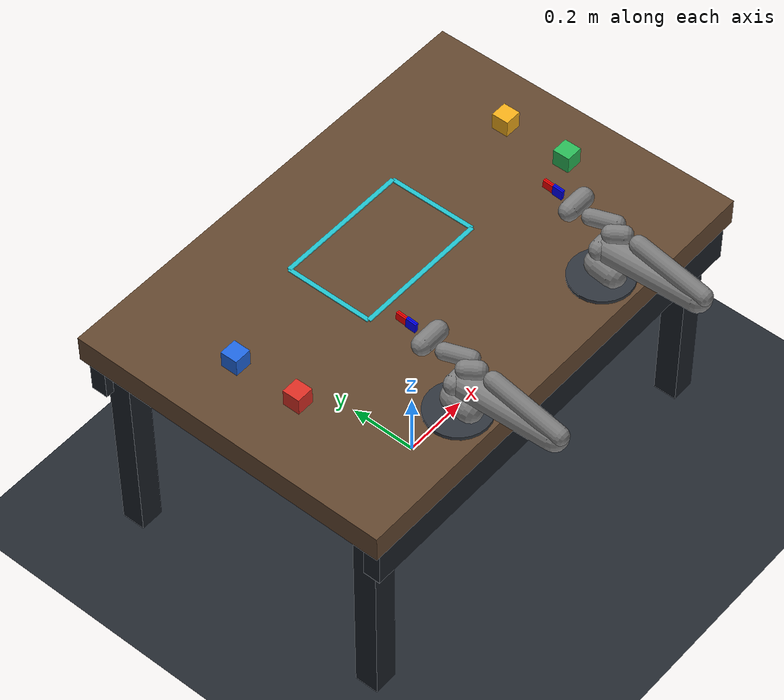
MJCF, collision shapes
<mujoco model="dual_piper_tabletop">
  <compiler angle="radian" meshdir="assets/"/>

  <option impratio="10" integrator="implicitfast" cone="elliptic"/>

  <visual>
    <global azimuth="135" elevation="-25" offwidth="1600" offheight="1200"/>
    <headlight ambient="0.25 0.25 0.25" diffuse="0.55 0.55 0.55" specular="0.1 0.1 0.1"/>
    <rgba haze="0.12 0.16 0.22 1"/>
  </visual>

  <statistic extent="1.25" center="0 0 0.72"/>

  <default>
    <default class="piper">
      <joint armature="0.005" frictionloss="0.3"/>
      <general forcerange="-100 100" biastype="affine" biasprm="0 -1"/>
      <default class="finger">
        <joint type="slide" frictionloss="0"/>
        <general forcerange="-10 10"/>
      </default>
      <default class="visual">
        <geom type="mesh" contype="0" conaffinity="0" group="2" density="0"/>
      </default>
      <default class="collision">
        <geom type="capsule" group="3"/>
      </default>
    </default>
  </default>

  <asset>
    <texture type="skybox" colorspace="auto" builtin="gradient" rgb1="0.18 0.23 0.3" rgb2="0.035 0.045 0.065" width="512" height="3072"/>
    <texture type="2d" colorspace="auto" name="groundplane_tex" builtin="checker" mark="edge" rgb1="0.16 0.18 0.21" rgb2="0.11 0.13 0.16" markrgb="0.32 0.36 0.42" width="300" height="300"/>
    <material name="gray_mat" rgba="0.59 0.59 0.59 1"/>
    <material name="light_gray_mat" rgba="0.98 0.98 0.98 1"/>
    <material name="light_medium_gray_mat" rgba="0.85 0.85 0.85 1"/>
    <material name="dark_gray_mat" rgba="0.086 0.086 0.086 1"/>
    <material name="darker_gray_mat" rgba="0.14 0.14 0.14 1"/>
    <material name="white_mat"/>
    <material name="red_mat" rgba="0.82 0.15 0.15 1"/>
    <material name="black_mat" rgba="0 0 0 1"/>
    <material name="light_blue" rgba="0.79 0.82 0.93 1"/>
    <material name="groundplane_mat" texture="groundplane_tex" texuniform="true" texrepeat="4 4" reflectance="0.12"/>
    <material name="tabletop_mat" specular="0.15" shininess="0.25" rgba="0.38 0.27 0.18 1"/>
    <material name="table_frame_mat" rgba="0.1 0.12 0.15 1"/>
    <material name="mount_mat" rgba="0.18 0.2 0.23 1"/>
    <mesh name="link2_0" content_type="model/obj" file="link2_0.obj"/>
    <mesh name="link2_1" content_type="model/obj" file="link2_1.obj"/>
    <mesh name="link2_2" content_type="model/obj" file="link2_2.obj"/>
    <mesh name="link2_3" content_type="model/obj" file="link2_3.obj"/>
    <mesh name="link2_4" content_type="model/obj" file="link2_4.obj"/>
    <mesh name="link2_5" content_type="model/obj" file="link2_5.obj"/>
    <mesh name="link2_6" content_type="model/obj" file="link2_6.obj"/>
    <mesh name="link2_7" content_type="model/obj" file="link2_7.obj"/>
    <mesh name="link2_8" content_type="model/obj" file="link2_8.obj"/>
    <mesh name="link2_9" content_type="model/obj" file="link2_9.obj"/>
    <mesh name="link2_10" content_type="model/obj" file="link2_10.obj"/>
    <mesh name="link2_11" content_type="model/obj" file="link2_11.obj"/>
    <mesh name="link2_12" content_type="model/obj" file="link2_12.obj"/>
    <mesh name="link2_13" content_type="model/obj" file="link2_13.obj"/>
    <mesh name="link2_14" content_type="model/obj" file="link2_14.obj"/>
    <mesh name="link2_15" content_type="model/obj" file="link2_15.obj"/>
    <mesh name="link2_16" content_type="model/obj" file="link2_16.obj"/>
    <mesh name="link2_17" content_type="model/obj" file="link2_17.obj"/>
    <mesh name="link2_18" content_type="model/obj" file="link2_18.obj"/>
    <mesh name="link2_19" content_type="model/obj" file="link2_19.obj"/>
    <mesh name="link2_20" content_type="model/obj" file="link2_20.obj"/>
    <mesh name="link2_21" content_type="model/obj" file="link2_21.obj"/>
    <mesh name="link2_22" content_type="model/obj" file="link2_22.obj"/>
    <mesh name="link2_23" content_type="model/obj" file="link2_23.obj"/>
    <mesh name="link2_24" content_type="model/obj" file="link2_24.obj"/>
    <mesh name="link2_25" content_type="model/obj" file="link2_25.obj"/>
    <mesh name="link2_26" content_type="model/obj" file="link2_26.obj"/>
    <mesh name="link2_27" content_type="model/obj" file="link2_27.obj"/>
    <mesh name="link2_28" content_type="model/obj" file="link2_28.obj"/>
    <mesh name="link2_29" content_type="model/obj" file="link2_29.obj"/>
    <mesh name="link2_30" content_type="model/obj" file="link2_30.obj"/>
    <mesh name="link2_31" content_type="model/obj" file="link2_31.obj"/>
    <mesh name="link3_0" content_type="model/obj" file="link3_0.obj"/>
    <mesh name="link3_1" content_type="model/obj" file="link3_1.obj"/>
    <mesh name="link3_2" content_type="model/obj" file="link3_2.obj"/>
    <mesh name="link3_3" content_type="model/obj" file="link3_3.obj"/>
    <mesh name="link3_4" content_type="model/obj" file="link3_4.obj"/>
    <mesh name="link3_5" content_type="model/obj" file="link3_5.obj"/>
    <mesh name="link3_7" content_type="model/obj" file="link3_7.obj"/>
    <mesh name="link3_8" content_type="model/obj" file="link3_8.obj"/>
    <mesh name="link3_9" content_type="model/obj" file="link3_9.obj"/>
    <mesh name="link3_10" content_type="model/obj" file="link3_10.obj"/>
    <mesh name="link3_11" content_type="model/obj" file="link3_11.obj"/>
    <mesh name="link3_12" content_type="model/obj" file="link3_12.obj"/>
    <mesh name="link3_13" content_type="model/obj" file="link3_13.obj"/>
    <mesh name="link3_14" content_type="model/obj" file="link3_14.obj"/>
    <mesh name="link3_15" content_type="model/obj" file="link3_15.obj"/>
    <mesh name="link3_16" content_type="model/obj" file="link3_16.obj"/>
    <mesh name="link3_17" content_type="model/obj" file="link3_17.obj"/>
    <mesh name="link3_18" content_type="model/obj" file="link3_18.obj"/>
    <mesh name="link3_19" content_type="model/obj" file="link3_19.obj"/>
    <mesh name="link3_20" content_type="model/obj" file="link3_20.obj"/>
    <mesh name="link3_21" content_type="model/obj" file="link3_21.obj"/>
    <mesh name="link3_22" content_type="model/obj" file="link3_22.obj"/>
    <mesh name="link3_23" content_type="model/obj" file="link3_23.obj"/>
    <mesh name="link3_24" content_type="model/obj" file="link3_24.obj"/>
    <mesh name="link3_25" content_type="model/obj" file="link3_25.obj"/>
    <mesh name="link3_26" content_type="model/obj" file="link3_26.obj"/>
    <mesh name="link3_27" content_type="model/obj" file="link3_27.obj"/>
    <mesh name="link3_28" content_type="model/obj" file="link3_28.obj"/>
    <mesh name="link4_2" content_type="model/obj" file="link4_2.obj"/>
    <mesh name="link4_3" content_type="model/obj" file="link4_3.obj"/>
    <mesh name="link4_4" content_type="model/obj" file="link4_4.obj"/>
    <mesh name="link4_5" content_type="model/obj" file="link4_5.obj"/>
    <mesh name="link4_6" content_type="model/obj" file="link4_6.obj"/>
    <mesh name="link5_2" content_type="model/obj" file="link5_2.obj"/>
    <mesh name="link5_3" content_type="model/obj" file="link5_3.obj"/>
    <mesh name="link5_4" content_type="model/obj" file="link5_4.obj"/>
    <mesh name="link5_5" content_type="model/obj" file="link5_5.obj"/>
    <mesh name="link5_6" content_type="model/obj" file="link5_6.obj"/>
    <mesh name="link5_7" content_type="model/obj" file="link5_7.obj"/>
    <mesh name="link5_8" content_type="model/obj" file="link5_8.obj"/>
    <mesh name="base_link" content_type="model/stl" file="base_link.stl"/>
    <mesh name="link1" content_type="model/stl" file="link1.stl"/>
    <mesh name="link2" content_type="model/stl" file="link2.stl"/>
    <mesh name="link2_gray" content_type="model/stl" file="link2_gray.stl"/>
    <mesh name="link3" content_type="model/stl" file="link3.stl"/>
    <mesh name="link4" content_type="model/stl" file="link4.stl"/>
    <mesh name="link5" content_type="model/stl" file="link5.stl"/>
    <mesh name="link6" content_type="model/stl" file="link6.stl"/>
    <mesh name="link7" content_type="model/stl" file="link7.stl"/>
    <mesh name="link8" content_type="model/stl" file="link8.stl"/>
  </asset>

  <worldbody>
    <geom name="floor" size="3 3 0.05" type="plane" material="groundplane_mat"/>
    <camera name="top_down" pos="0 0 2.25" fovy="42"/>
    <light name="key_light" pos="0 -1.2 2.4" dir="0 0.33035 -0.943858" diffuse="0.85 0.82 0.78"/>
    <light name="fill_light" pos="0.8 1 1.8" dir="-0.232873 -0.279448 -0.931493" diffuse="0.45 0.52 0.62"/>
    <body name="base_link_arm0" childclass="piper" pos="-0.28 -0.38 0.72"
      quat="0.707107 0 0 0.707107" gravcomp="1">
      <inertial pos="-0.00979275 1.82906e-06 0.04101" quat="0.692988 -0.137524 -0.137826 0.69416" mass="0.162549" diaginertia="0.000269445 0.000227478 0.000221437"/>
      <geom class="visual" material="gray_mat" mesh="base_link"/>
      <geom class="collision" size="0.0357691 0.024065" pos="-0.0107422 1.86147e-06 0.0395259" quat="0.536726 0.460902 0.460261 0.536334"/>
      <body name="link1_arm0" pos="0 0 0.123" quat="0.707105 0 0 -0.707108" gravcomp="1">
        <inertial pos="0.00131676 0.000310289 -0.00922875" quat="0.557105 0.432155 0.377373 0.600388" mass="0.097868" diaginertia="9.25942e-05 8.3083e-05 7.69469e-05"/>
        <joint name="joint1_arm0" pos="0 0 0" axis="0 0 1" range="-2.618 2.618"/>
        <geom class="visual" material="gray_mat" mesh="link1"/>
        <geom class="collision" size="0.0271645 0.0182943" pos="0.00101464 -0.000188218 -0.00563398" quat="0.519141 0.484098 0.499512 0.496617"/>
        <body name="link2_arm0" quat="0.499998 0.5 -0.500002 -0.5" gravcomp="1">
          <inertial pos="0.148794 -0.00242027 0.00175155" quat="-0.0249063 0.70684 0.00803509 0.706889" mass="0.290889" diaginertia="0.00177549 0.00173142 0.00014552"/>
          <joint name="joint2_arm0" pos="0 0 0" axis="0 0 1" range="0 3.14"/>
          <geom class="visual" material="gray_mat" mesh="link2_0"/>
          <geom class="visual" material="darker_gray_mat" mesh="link2_1"/>
          <geom class="visual" material="darker_gray_mat" mesh="link2_2"/>
          <geom class="visual" material="dark_gray_mat" mesh="link2_3"/>
          <geom class="visual" material="dark_gray_mat" mesh="link2_4"/>
          <geom class="visual" material="red_mat" mesh="link2_5"/>
          <geom class="visual" material="dark_gray_mat" mesh="link2_6"/>
          <geom class="visual" material="gray_mat" mesh="link2_7"/>
          <geom class="visual" material="red_mat" mesh="link2_8"/>
          <geom class="visual" material="red_mat" mesh="link2_9"/>
          <geom class="visual" material="gray_mat" mesh="link2_10"/>
          <geom class="visual" material="red_mat" mesh="link2_11"/>
          <geom class="visual" material="red_mat" mesh="link2_12"/>
          <geom class="visual" material="red_mat" mesh="link2_13"/>
          <geom class="visual" material="red_mat" mesh="link2_14"/>
          <geom class="visual" material="red_mat" mesh="link2_15"/>
          <geom class="visual" material="red_mat" mesh="link2_16"/>
          <geom class="visual" material="red_mat" mesh="link2_17"/>
          <geom class="visual" material="red_mat" mesh="link2_18"/>
          <geom class="visual" material="red_mat" mesh="link2_19"/>
          <geom class="visual" material="red_mat" mesh="link2_20"/>
          <geom class="visual" material="gray_mat" mesh="link2_21"/>
          <geom class="visual" material="red_mat" mesh="link2_22"/>
          <geom class="visual" material="red_mat" mesh="link2_23"/>
          <geom class="visual" material="red_mat" mesh="link2_24"/>
          <geom class="visual" material="dark_gray_mat" mesh="link2_25"/>
          <geom class="visual" material="red_mat" mesh="link2_26"/>
          <geom class="visual" material="darker_gray_mat" mesh="link2_27"/>
          <geom class="visual" material="darker_gray_mat" mesh="link2_28"/>
          <geom class="visual" material="darker_gray_mat" mesh="link2_29"/>
          <geom class="visual" material="darker_gray_mat" mesh="link2_30"/>
          <geom class="visual" material="light_medium_gray_mat" mesh="link2_31"/>
          <geom class="collision" size="0.0354545 0.136662" pos="0.152179 -0.00040773 0.000313761" quat="0.486718 0.483816 0.516937 0.511668"/>
          <body name="link3_arm0" pos="0.28358 0.028726 0" quat="0.998726 0 0 0.0504536" gravcomp="1">
            <inertial pos="-0.0996835 0.0349477 0.000508026" quat="0.0777021 0.702287 -0.0990541 0.700674" mass="0.290848" diaginertia="0.000241946 0.000222224 0.000100384"/>
            <joint name="joint3_arm0" pos="0 0 0" axis="0 0 1" range="-2.697 0"/>
            <geom class="visual" material="darker_gray_mat" mesh="link3_0"/>
            <geom class="visual" material="red_mat" mesh="link3_1"/>
            <geom class="visual" material="gray_mat" mesh="link3_2"/>
            <geom class="visual" material="gray_mat" mesh="link3_3"/>
            <geom class="visual" material="gray_mat" mesh="link3_4"/>
            <geom class="visual" material="gray_mat" mesh="link3_5"/>
            <geom class="visual" material="darker_gray_mat" mesh="link3_7"/>
            <geom class="visual" material="white_mat" mesh="link3_8"/>
            <geom class="visual" material="red_mat" mesh="link3_9"/>
            <geom class="visual" material="white_mat" mesh="link3_10"/>
            <geom class="visual" material="white_mat" mesh="link3_11"/>
            <geom class="visual" material="white_mat" mesh="link3_12"/>
            <geom class="visual" material="white_mat" mesh="link3_13"/>
            <geom class="visual" material="gray_mat" mesh="link3_14"/>
            <geom class="visual" material="gray_mat" mesh="link3_15"/>
            <geom class="visual" material="gray_mat" mesh="link3_16"/>
            <geom class="visual" material="gray_mat" mesh="link3_17"/>
            <geom class="visual" material="gray_mat" mesh="link3_18"/>
            <geom class="visual" material="gray_mat" mesh="link3_19"/>
            <geom class="visual" material="gray_mat" mesh="link3_20"/>
            <geom class="visual" material="gray_mat" mesh="link3_21"/>
            <geom class="visual" material="gray_mat" mesh="link3_22"/>
            <geom class="visual" material="gray_mat" mesh="link3_23"/>
            <geom class="visual" material="gray_mat" mesh="link3_24"/>
            <geom class="visual" material="gray_mat" mesh="link3_25"/>
            <geom class="visual" material="gray_mat" mesh="link3_26"/>
            <geom class="visual" material="gray_mat" mesh="link3_27"/>
            <geom class="visual" material="gray_mat" mesh="link3_28"/>
            <geom class="collision" size="0.0246371 0.102428" pos="-0.0767504 0.02843 0.000535139" quat="0.569519 0.572735 0.410029 0.423674"/>
            <body name="link4_arm0" pos="-0.24221 0.068514 0" quat="0.544767 -0.544769 -0.450809 0.450808" gravcomp="1">
              <inertial pos="0.000276465 -0.00102804 -0.00472831" quat="0.492305 0.505285 0.503294 0.499017" mass="0.127087" diaginertia="4.87057e-05 4.10595e-05 3.82001e-05"/>
              <joint name="joint4_arm0" pos="0 0 0" axis="0 0 1" range="-1.832 1.832"/>
              <geom class="visual" material="gray_mat" mesh="link4_2"/>
              <geom class="visual" material="darker_gray_mat" mesh="link4_3"/>
              <geom class="visual" material="gray_mat" mesh="link4_4"/>
              <geom class="visual" material="gray_mat" mesh="link4_5"/>
              <geom class="visual" material="gray_mat" mesh="link4_6"/>
              <geom class="collision" size="0.0238936 0.016908" pos="0.000761852 -0.00691041 -0.0082418" quat="0.955364 0.287171 -0.0612394 0.03258"/>
              <body name="link5_arm0" quat="0.707105 0.707108 0 0" gravcomp="1">
                <inertial pos="8.82262e-05 0.0566829 -0.0019612" quat="0.507447 0.490986 0.506887 0.494466" mass="0.144711" diaginertia="0.001 0.001 0.001"/>
                <joint name="joint5_arm0" pos="0 0 0" axis="0 0 1" range="-1.22 1.22"/>
                <geom class="visual" material="black_mat" mesh="link5_2"/>
                <geom class="visual" material="black_mat" mesh="link5_3"/>
                <geom class="visual" material="darker_gray_mat" mesh="link5_4"/>
                <geom class="visual" material="gray_mat" mesh="link5_5"/>
                <geom class="visual" material="light_gray_mat" mesh="link5_6"/>
                <geom class="visual" material="gray_mat" mesh="link5_7"/>
                <geom class="visual" material="gray_mat" mesh="link5_8"/>
                <geom class="collision" size="0.0224253 0.0337559" pos="0.000165456 0.0435329 -0.00463601" quat="0.351922 0.544329 -0.638336 0.415191"/>
                <body name="link6_arm0" pos="0 0.091 0.0014165" quat="0 0 -0.707105 -0.707108" gravcomp="1">
                  <inertial pos="0.0010312 0.0121761 0.0315481" quat="0.0230402 0.707091 0.0373344 0.70576" mass="1.2" diaginertia="0.001 0.001 0.001"/>
                  <joint name="joint6_arm0" pos="0 0 0" axis="0 0 1" range="-3.14 3.14"/>
                  <geom class="visual" quat="0.707105 0 0 0.707108" material="gray_mat" mesh="link6"/>
                  <geom class="collision" size="0.0264136 0.0296273" pos="-0.000316499 -5.15037e-08 0.0332864" quat="0.00759712 -0.00727331 0.707074 0.707062"/>
                  <!-- Fixed wrist mount: camera -Z optical axis is parallel to the gripper +Z approach axis. -->
                  <camera name="wrist_camera_arm0" pos="0.075 0 0.11"
                    xyaxes="0 -1 0 -1 0 0" fovy="72"/>
                  <!-- TCP at the midpoint of the two fingertip contact sites. -->
                  <site name="grasp_center_arm0" pos="0 0 0.09003" size="0.003" group="4" rgba="0.2 0.8 1 0.1"/>
                  <body name="left_finger_arm0" pos="0 0 0.13503" quat="1.89468e-08 1.89469e-08 0.707108 0.707105" gravcomp="1">
                    <inertial pos="-0.000277778 -0.0467673 -0.00921029" quat="0.46134 0.536174 -0.553273 0.439968" mass="0.0264823" diaginertia="0.001 0.001 0.001"/>
                    <joint name="joint7_arm0" class="finger" pos="0 0 0" axis="0 0 -1" range="0 0.035"/>
                    <geom class="visual" material="gray_mat" mesh="link7"/>
                    <geom class="collision" size="0.012 0.015 0.0025" pos="0 -0.015 -0.0025" type="box" rgba="1 0 0 0.2"/>
                    <geom class="collision" size="0.015 0.015 0.0025" pos="0 -0.045 -0.0025" type="box" rgba="0 0 1 0.2"/>
                    <site name="left_fingertip_arm0" pos="0 -0.045 -0.0025" size="0.002" group="4" rgba="0.2 0.8 1 0.1"/>
                  </body>
                  <body name="right_finger_arm0" pos="0 0 0.13503" quat="1.89468e-08 -1.89469e-08 -0.707108 0.707105" gravcomp="1">
                    <inertial pos="0.000277817 0.0467674 -0.0092103" quat="0.553273 0.439968 -0.46134 0.536174" mass="0.0264822" diaginertia="0.001 0.001 0.001"/>
                    <joint name="joint8_arm0" class="finger" pos="0 0 0" axis="0 0 1" range="-0.035 0"/>
                    <geom class="visual" material="gray_mat" mesh="link8"/>
                    <geom class="collision" size="0.012 0.015 0.0025" pos="0 0.015 -0.0025" type="box" rgba="1 0 0 0.2"/>
                    <geom class="collision" size="0.015 0.015 0.0025" pos="0 0.045 -0.0025" type="box" rgba="0 0 1 0.2"/>
                    <site name="right_fingertip_arm0" pos="0 0.045 -0.0025" size="0.002" group="4" rgba="0.2 0.8 1 0.1"/>
                  </body>
                </body>
              </body>
            </body>
          </body>
        </body>
      </body>
    </body>
    <body name="base_link_arm1" childclass="piper" pos="0.28 -0.38 0.72"
      quat="0.707107 0 0 0.707107" gravcomp="1">
      <inertial pos="-0.00979275 1.82906e-06 0.04101" quat="0.692988 -0.137524 -0.137826 0.69416" mass="0.162549" diaginertia="0.000269445 0.000227478 0.000221437"/>
      <geom class="visual" material="gray_mat" mesh="base_link"/>
      <geom class="collision" size="0.0357691 0.024065" pos="-0.0107422 1.86147e-06 0.0395259" quat="0.536726 0.460902 0.460261 0.536334"/>
      <body name="link1_arm1" pos="0 0 0.123" quat="0.707105 0 0 -0.707108" gravcomp="1">
        <inertial pos="0.00131676 0.000310289 -0.00922875" quat="0.557105 0.432155 0.377373 0.600388" mass="0.097868" diaginertia="9.25942e-05 8.3083e-05 7.69469e-05"/>
        <joint name="joint1_arm1" pos="0 0 0" axis="0 0 1" range="-2.618 2.618"/>
        <geom class="visual" material="gray_mat" mesh="link1"/>
        <geom class="collision" size="0.0271645 0.0182943" pos="0.00101464 -0.000188218 -0.00563398" quat="0.519141 0.484098 0.499512 0.496617"/>
        <body name="link2_arm1" quat="0.499998 0.5 -0.500002 -0.5" gravcomp="1">
          <inertial pos="0.148794 -0.00242027 0.00175155" quat="-0.0249063 0.70684 0.00803509 0.706889" mass="0.290889" diaginertia="0.00177549 0.00173142 0.00014552"/>
          <joint name="joint2_arm1" pos="0 0 0" axis="0 0 1" range="0 3.14"/>
          <geom class="visual" material="gray_mat" mesh="link2_0"/>
          <geom class="visual" material="darker_gray_mat" mesh="link2_1"/>
          <geom class="visual" material="darker_gray_mat" mesh="link2_2"/>
          <geom class="visual" material="dark_gray_mat" mesh="link2_3"/>
          <geom class="visual" material="dark_gray_mat" mesh="link2_4"/>
          <geom class="visual" material="red_mat" mesh="link2_5"/>
          <geom class="visual" material="dark_gray_mat" mesh="link2_6"/>
          <geom class="visual" material="gray_mat" mesh="link2_7"/>
          <geom class="visual" material="red_mat" mesh="link2_8"/>
          <geom class="visual" material="red_mat" mesh="link2_9"/>
          <geom class="visual" material="gray_mat" mesh="link2_10"/>
          <geom class="visual" material="red_mat" mesh="link2_11"/>
          <geom class="visual" material="red_mat" mesh="link2_12"/>
          <geom class="visual" material="red_mat" mesh="link2_13"/>
          <geom class="visual" material="red_mat" mesh="link2_14"/>
          <geom class="visual" material="red_mat" mesh="link2_15"/>
          <geom class="visual" material="red_mat" mesh="link2_16"/>
          <geom class="visual" material="red_mat" mesh="link2_17"/>
          <geom class="visual" material="red_mat" mesh="link2_18"/>
          <geom class="visual" material="red_mat" mesh="link2_19"/>
          <geom class="visual" material="red_mat" mesh="link2_20"/>
          <geom class="visual" material="gray_mat" mesh="link2_21"/>
          <geom class="visual" material="red_mat" mesh="link2_22"/>
          <geom class="visual" material="red_mat" mesh="link2_23"/>
          <geom class="visual" material="red_mat" mesh="link2_24"/>
          <geom class="visual" material="dark_gray_mat" mesh="link2_25"/>
          <geom class="visual" material="red_mat" mesh="link2_26"/>
          <geom class="visual" material="darker_gray_mat" mesh="link2_27"/>
          <geom class="visual" material="darker_gray_mat" mesh="link2_28"/>
          <geom class="visual" material="darker_gray_mat" mesh="link2_29"/>
          <geom class="visual" material="darker_gray_mat" mesh="link2_30"/>
          <geom class="visual" material="light_medium_gray_mat" mesh="link2_31"/>
          <geom class="collision" size="0.0354545 0.136662" pos="0.152179 -0.00040773 0.000313761" quat="0.486718 0.483816 0.516937 0.511668"/>
          <body name="link3_arm1" pos="0.28358 0.028726 0" quat="0.998726 0 0 0.0504536" gravcomp="1">
            <inertial pos="-0.0996835 0.0349477 0.000508026" quat="0.0777021 0.702287 -0.0990541 0.700674" mass="0.290848" diaginertia="0.000241946 0.000222224 0.000100384"/>
            <joint name="joint3_arm1" pos="0 0 0" axis="0 0 1" range="-2.697 0"/>
            <geom class="visual" material="darker_gray_mat" mesh="link3_0"/>
            <geom class="visual" material="red_mat" mesh="link3_1"/>
            <geom class="visual" material="gray_mat" mesh="link3_2"/>
            <geom class="visual" material="gray_mat" mesh="link3_3"/>
            <geom class="visual" material="gray_mat" mesh="link3_4"/>
            <geom class="visual" material="gray_mat" mesh="link3_5"/>
            <geom class="visual" material="darker_gray_mat" mesh="link3_7"/>
            <geom class="visual" material="white_mat" mesh="link3_8"/>
            <geom class="visual" material="red_mat" mesh="link3_9"/>
            <geom class="visual" material="white_mat" mesh="link3_10"/>
            <geom class="visual" material="white_mat" mesh="link3_11"/>
            <geom class="visual" material="white_mat" mesh="link3_12"/>
            <geom class="visual" material="white_mat" mesh="link3_13"/>
            <geom class="visual" material="gray_mat" mesh="link3_14"/>
            <geom class="visual" material="gray_mat" mesh="link3_15"/>
            <geom class="visual" material="gray_mat" mesh="link3_16"/>
            <geom class="visual" material="gray_mat" mesh="link3_17"/>
            <geom class="visual" material="gray_mat" mesh="link3_18"/>
            <geom class="visual" material="gray_mat" mesh="link3_19"/>
            <geom class="visual" material="gray_mat" mesh="link3_20"/>
            <geom class="visual" material="gray_mat" mesh="link3_21"/>
            <geom class="visual" material="gray_mat" mesh="link3_22"/>
            <geom class="visual" material="gray_mat" mesh="link3_23"/>
            <geom class="visual" material="gray_mat" mesh="link3_24"/>
            <geom class="visual" material="gray_mat" mesh="link3_25"/>
            <geom class="visual" material="gray_mat" mesh="link3_26"/>
            <geom class="visual" material="gray_mat" mesh="link3_27"/>
            <geom class="visual" material="gray_mat" mesh="link3_28"/>
            <geom class="collision" size="0.0246371 0.102428" pos="-0.0767504 0.02843 0.000535139" quat="0.569519 0.572735 0.410029 0.423674"/>
            <body name="link4_arm1" pos="-0.24221 0.068514 0" quat="0.544767 -0.544769 -0.450809 0.450808" gravcomp="1">
              <inertial pos="0.000276465 -0.00102804 -0.00472831" quat="0.492305 0.505285 0.503294 0.499017" mass="0.127087" diaginertia="4.87057e-05 4.10595e-05 3.82001e-05"/>
              <joint name="joint4_arm1" pos="0 0 0" axis="0 0 1" range="-1.832 1.832"/>
              <geom class="visual" material="gray_mat" mesh="link4_2"/>
              <geom class="visual" material="darker_gray_mat" mesh="link4_3"/>
              <geom class="visual" material="gray_mat" mesh="link4_4"/>
              <geom class="visual" material="gray_mat" mesh="link4_5"/>
              <geom class="visual" material="gray_mat" mesh="link4_6"/>
              <geom class="collision" size="0.0238936 0.016908" pos="0.000761852 -0.00691041 -0.0082418" quat="0.955364 0.287171 -0.0612394 0.03258"/>
              <body name="link5_arm1" quat="0.707105 0.707108 0 0" gravcomp="1">
                <inertial pos="8.82262e-05 0.0566829 -0.0019612" quat="0.507447 0.490986 0.506887 0.494466" mass="0.144711" diaginertia="0.001 0.001 0.001"/>
                <joint name="joint5_arm1" pos="0 0 0" axis="0 0 1" range="-1.22 1.22"/>
                <geom class="visual" material="black_mat" mesh="link5_2"/>
                <geom class="visual" material="black_mat" mesh="link5_3"/>
                <geom class="visual" material="darker_gray_mat" mesh="link5_4"/>
                <geom class="visual" material="gray_mat" mesh="link5_5"/>
                <geom class="visual" material="light_gray_mat" mesh="link5_6"/>
                <geom class="visual" material="gray_mat" mesh="link5_7"/>
                <geom class="visual" material="gray_mat" mesh="link5_8"/>
                <geom class="collision" size="0.0224253 0.0337559" pos="0.000165456 0.0435329 -0.00463601" quat="0.351922 0.544329 -0.638336 0.415191"/>
                <body name="link6_arm1" pos="0 0.091 0.0014165" quat="0 0 -0.707105 -0.707108" gravcomp="1">
                  <inertial pos="0.0010312 0.0121761 0.0315481" quat="0.0230402 0.707091 0.0373344 0.70576" mass="1.2" diaginertia="0.001 0.001 0.001"/>
                  <joint name="joint6_arm1" pos="0 0 0" axis="0 0 1" range="-3.14 3.14"/>
                  <geom class="visual" quat="0.707105 0 0 0.707108" material="gray_mat" mesh="link6"/>
                  <geom class="collision" size="0.0264136 0.0296273" pos="-0.000316499 -5.15037e-08 0.0332864" quat="0.00759712 -0.00727331 0.707074 0.707062"/>
                  <!-- Fixed wrist mount: camera -Z optical axis is parallel to the gripper +Z approach axis. -->
                  <camera name="wrist_camera_arm1" pos="0.075 0 0.11"
                    xyaxes="0 -1 0 -1 0 0" fovy="72"/>
                  <!-- TCP at the midpoint of the two fingertip contact sites. -->
                  <site name="grasp_center_arm1" pos="0 0 0.09003" size="0.003" group="4" rgba="0.2 0.8 1 0.1"/>
                  <body name="left_finger_arm1" pos="0 0 0.13503" quat="1.89468e-08 1.89469e-08 0.707108 0.707105" gravcomp="1">
                    <inertial pos="-0.000277778 -0.0467673 -0.00921029" quat="0.46134 0.536174 -0.553273 0.439968" mass="0.0264823" diaginertia="0.001 0.001 0.001"/>
                    <joint name="joint7_arm1" class="finger" pos="0 0 0" axis="0 0 -1" range="0 0.035"/>
                    <geom class="visual" material="gray_mat" mesh="link7"/>
                    <geom class="collision" size="0.012 0.015 0.0025" pos="0 -0.015 -0.0025" type="box" rgba="1 0 0 0.2"/>
                    <geom class="collision" size="0.015 0.015 0.0025" pos="0 -0.045 -0.0025" type="box" rgba="0 0 1 0.2"/>
                    <site name="left_fingertip_arm1" pos="0 -0.045 -0.0025" size="0.002" group="4" rgba="0.2 0.8 1 0.1"/>
                  </body>
                  <body name="right_finger_arm1" pos="0 0 0.13503" quat="1.89468e-08 -1.89469e-08 -0.707108 0.707105" gravcomp="1">
                    <inertial pos="0.000277817 0.0467674 -0.0092103" quat="0.553273 0.439968 -0.46134 0.536174" mass="0.0264822" diaginertia="0.001 0.001 0.001"/>
                    <joint name="joint8_arm1" class="finger" pos="0 0 0" axis="0 0 1" range="-0.035 0"/>
                    <geom class="visual" material="gray_mat" mesh="link8"/>
                    <geom class="collision" size="0.012 0.015 0.0025" pos="0 0.015 -0.0025" type="box" rgba="1 0 0 0.2"/>
                    <geom class="collision" size="0.015 0.015 0.0025" pos="0 0.045 -0.0025" type="box" rgba="0 0 1 0.2"/>
                    <site name="right_fingertip_arm1" pos="0 0.045 -0.0025" size="0.002" group="4" rgba="0.2 0.8 1 0.1"/>
                  </body>
                </body>
              </body>
            </body>
          </body>
        </body>
      </body>
    </body>
    <body name="table">
      <geom name="tabletop" size="0.7 0.48 0.04" pos="0 0 0.68" type="box" friction="1.1 0.02 0.001" material="tabletop_mat"/>
      <geom name="table_apron_front" size="0.68 0.025 0.06" pos="0 -0.445 0.58" type="box" material="table_frame_mat"/>
      <geom name="table_apron_back" size="0.68 0.025 0.06" pos="0 0.445 0.58" type="box" material="table_frame_mat"/>
      <geom name="table_leg_fl" size="0.035 0.035 0.32" pos="-0.62 -0.4 0.32" type="box" material="table_frame_mat"/>
      <geom name="table_leg_fr" size="0.035 0.035 0.32" pos="0.62 -0.4 0.32" type="box" material="table_frame_mat"/>
      <geom name="table_leg_bl" size="0.035 0.035 0.32" pos="-0.62 0.4 0.32" type="box" material="table_frame_mat"/>
      <geom name="table_leg_br" size="0.035 0.035 0.32" pos="0.62 0.4 0.32" type="box" material="table_frame_mat"/>
      <geom name="left_mount_plate" size="0.09 0.015" pos="-0.28 -0.38 0.715"
        type="cylinder" material="mount_mat"/>
      <geom name="right_mount_plate" size="0.09 0.015" pos="0.28 -0.38 0.715"
        type="cylinder" material="mount_mat"/>
      <!-- Visual-only drop zone for future cube placement; it has no collision response. -->
      <geom name="cube_drop_zone_left_edge_visual" type="box" pos="-0.20 0.10 0.722"
        size="0.006 0.13 0.002" rgba="0.12 0.88 0.95 0.85"
        contype="0" conaffinity="0" group="1"/>
      <geom name="cube_drop_zone_right_edge_visual" type="box" pos="0.20 0.10 0.722"
        size="0.006 0.13 0.002" rgba="0.12 0.88 0.95 0.85"
        contype="0" conaffinity="0" group="1"/>
      <geom name="cube_drop_zone_near_edge_visual" type="box" pos="0 -0.03 0.722"
        size="0.20 0.006 0.002" rgba="0.12 0.88 0.95 0.85"
        contype="0" conaffinity="0" group="1"/>
      <geom name="cube_drop_zone_far_edge_visual" type="box" pos="0 0.23 0.722"
        size="0.20 0.006 0.002" rgba="0.12 0.88 0.95 0.85"
        contype="0" conaffinity="0" group="1"/>
    </body>
    <body name="red_cube" pos="-0.52 -0.08 0.765">
      <joint type="free"/>
      <geom size="0.025 0.025 0.025" type="box" friction="1.2 0.01 0.001" mass="0.07" rgba="0.86 0.18 0.14 1"/>
    </body>
    <body name="blue_cube" pos="-0.52 0.12 0.755">
      <joint type="free"/>
      <geom size="0.025 0.025 0.025" type="box" friction="1.2 0.01 0.001" mass="0.07" rgba="0.12 0.4 0.88 1"/>
    </body>
    <body name="green_cube" pos="0.52 -0.08 0.76">
      <joint type="free"/>
      <geom size="0.025 0.025 0.025" type="box" friction="1.2 0.01 0.001" mass="0.07"
        rgba="0.16 0.72 0.34 1"/>
    </body>
    <body name="yellow_cube" pos="0.52 0.12 0.76">
      <joint type="free"/>
      <geom size="0.025 0.025 0.025" type="box" friction="1.2 0.01 0.001" mass="0.07"
        rgba="0.95 0.68 0.1 1"/>
    </body>
  </worldbody>

  <contact>
    <exclude body1="base_link_arm0" body2="link1_arm0"/>
    <exclude body1="base_link_arm1" body2="link1_arm1"/>
  </contact>

  <equality>
    <joint joint1="joint8_arm0" joint2="joint7_arm0" polycoef="0 -1 0 0 0"/>
    <joint joint1="joint8_arm1" joint2="joint7_arm1" polycoef="0 -1 0 0 0"/>
  </equality>

  <actuator>
    <general name="joint1_arm0" class="piper" joint="joint1_arm0" ctrlrange="-2.618 2.618" gainprm="80" biasprm="0 -80 -5"/>
    <general name="joint2_arm0" class="piper" joint="joint2_arm0" ctrlrange="0 3.14" gainprm="80" biasprm="0 -80 -5"/>
    <general name="joint3_arm0" class="piper" joint="joint3_arm0" ctrlrange="-2.697 0" gainprm="80" biasprm="0 -80 -5"/>
    <general name="joint4_arm0" class="piper" joint="joint4_arm0" ctrlrange="-1.832 1.832" gainprm="40" biasprm="0 -40 -5"/>
    <general name="joint5_arm0" class="piper" joint="joint5_arm0" ctrlrange="-1.22 1.22" gainprm="10" biasprm="0 -10 -1.5"/>
    <general name="joint6_arm0" class="piper" joint="joint6_arm0" ctrlrange="-3.14 3.14" gainprm="10" biasprm="0 -10 -1.5"/>
    <general name="gripper_arm0" class="finger" joint="joint7_arm0" ctrlrange="0 0.035" gainprm="40" biasprm="0 -40 -5"/>
    <general name="joint1_arm1" class="piper" joint="joint1_arm1" ctrlrange="-2.618 2.618" gainprm="80" biasprm="0 -80 -5"/>
    <general name="joint2_arm1" class="piper" joint="joint2_arm1" ctrlrange="0 3.14" gainprm="80" biasprm="0 -80 -5"/>
    <general name="joint3_arm1" class="piper" joint="joint3_arm1" ctrlrange="-2.697 0" gainprm="80" biasprm="0 -80 -5"/>
    <general name="joint4_arm1" class="piper" joint="joint4_arm1" ctrlrange="-1.832 1.832" gainprm="40" biasprm="0 -40 -5"/>
    <general name="joint5_arm1" class="piper" joint="joint5_arm1" ctrlrange="-1.22 1.22" gainprm="10" biasprm="0 -10 -1.5"/>
    <general name="joint6_arm1" class="piper" joint="joint6_arm1" ctrlrange="-3.14 3.14" gainprm="10" biasprm="0 -10 -1.5"/>
    <general name="gripper_arm1" class="finger" joint="joint7_arm1" ctrlrange="0 0.035" gainprm="40" biasprm="0 -40 -5"/>
  </actuator>

  <!-- Gripper control: 0 is closed; 0.035 m is fully open (about 70 mm between opposing fingers). -->
  <keyframe>
    <key name="ready"
      qpos="0 1.57 -1.3485 0 0 0 0.025 -0.025  0 1.57 -1.3485 0 0 0 0.025 -0.025  -0.52 -0.08 0.765 1 0 0 0  -0.52 0.12 0.755 1 0 0 0  0.52 -0.08 0.76 1 0 0 0  0.52 0.12 0.76 1 0 0 0"
      ctrl="0 1.57 -1.3485 0 0 0 0.025  0 1.57 -1.3485 0 0 0 0.025"/>
  </keyframe>
</mujoco>
